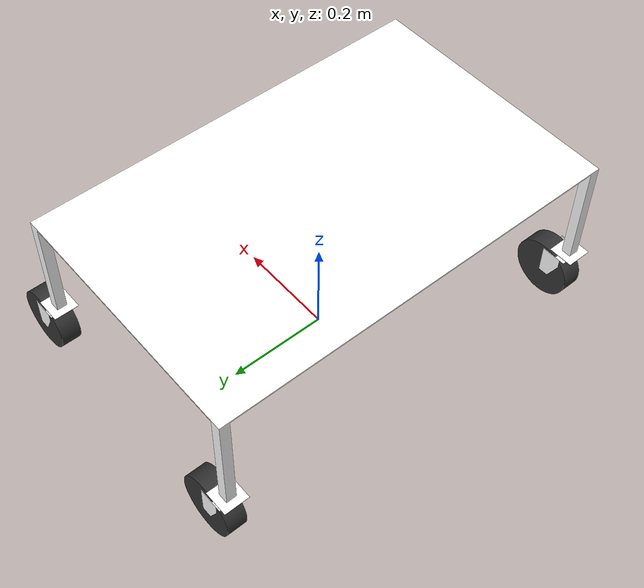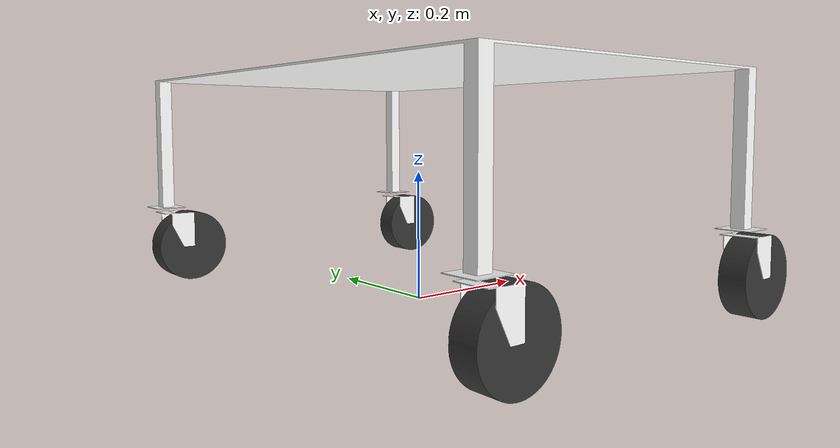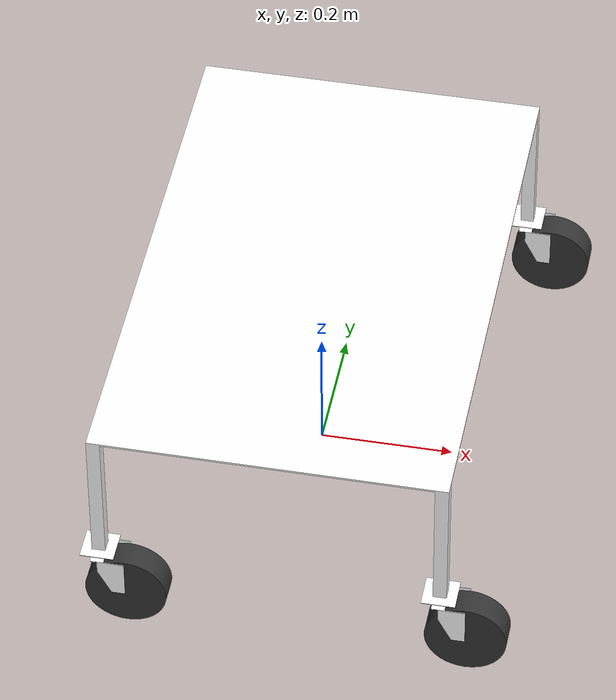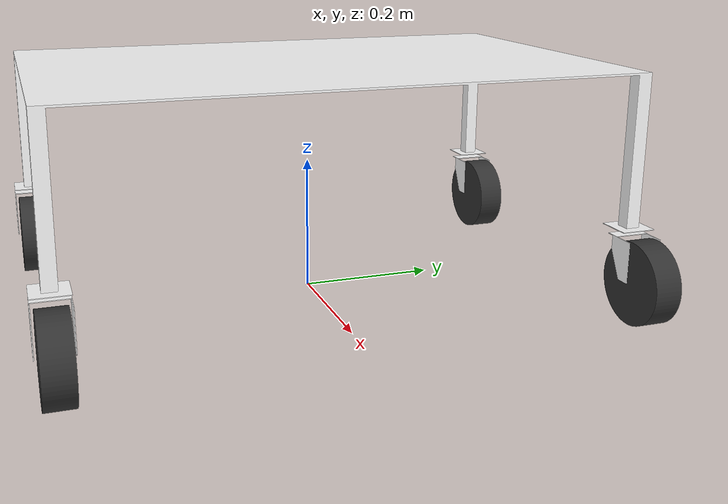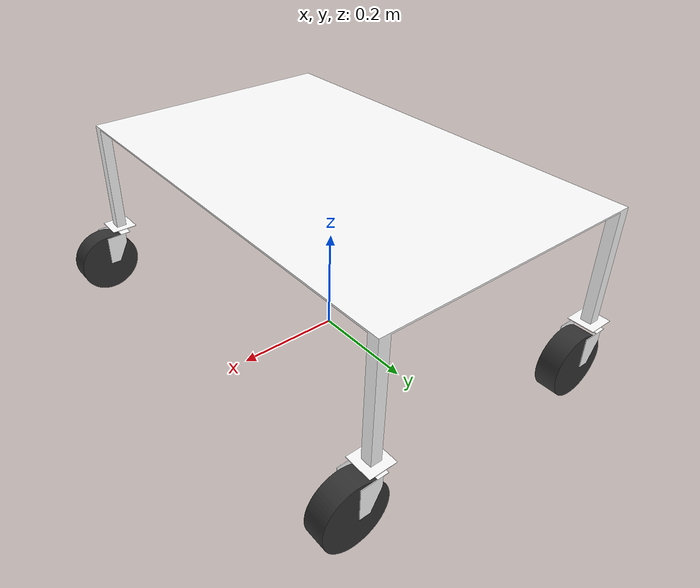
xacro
<?xml version="1.0" encoding="utf-8"?>
<robot xmlns:xacro="http://www.ros.org/wiki/xacro" name="movingshelf_4wheels_low_lifter">
	<xacro:include filename="$(find transbot_description)/urdf/movingshelf_4wheels_low_lifter/movingshelf_4wheels_low_lifter.urdf.xacro"></xacro:include>
	<xacro:movingshelf_4wheels_low_lifter prefix="" name=""></xacro:movingshelf_4wheels_low_lifter>
</robot>

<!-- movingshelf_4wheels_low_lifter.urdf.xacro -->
<robot xmlns:xacro="http://www.ros.org/wiki/xacro" name="movingshelf_4wheels_low_lifter">
	<xacro:macro name="movingshelf_4wheels_low_lifter" params="prefix='' name='movingshelf_4wheels_low_lifter' suffix=''">
		<link name="${prefix}${name}${suffix}_">
			<inertial density="7850">
				<origin xyz="7.1434424969451784e-09 -1.0000819495723251e-07 0.34356975308719584" rpy="0 0 0"></origin>
				<mass value="1.3580674615999062"></mass>
				<inertia ixx="0.08552684471742028" ixy="-9.702071834397552e-16" ixz="4.060661042722211e-09" iyy="0.03498381337262271" iyz="-5.4423935393383165e-08" izz="0.11806034793455031"></inertia>
			</inertial>
			<visual>
				<geometry>
					<mesh filename="package://transbot_description/meshes/movingshelf_4wheels_low_lifter/_.stl" scale="1e-3 1e-3 1e-3"></mesh>
				</geometry>
				<material name="">
					<color rgba="1 1 1 1"></color>
				</material>
			</visual>
			<collision>
				<geometry>
					<mesh filename="package://transbot_description/meshes/movingshelf_4wheels_low_lifter/_.stl" scale="1e-3 1e-3 1e-3"></mesh>
				</geometry>
			</collision>
		</link>
		<xacro:include filename="$(find transbot_description)/urdf/movingshelf_4wheels_low_lifter/castor/castor.urdf.xacro"></xacro:include>
		<joint name="j/${prefix}${name}${suffix}castor0/_" type="fixed">
			<origin xyz="0.25 0.4 0.13" rpy="0.0 0.0 0.0"></origin>
			<parent link="${prefix}${name}${suffix}_"></parent>
			<child link="${prefix}${name}${suffix}castor0/_"></child>
		</joint>
		<joint name="j/${prefix}${name}${suffix}castor1/_" type="fixed">
			<origin xyz="-0.25 0.4 0.13" rpy="0.0 0.0 0.0"></origin>
			<parent link="${prefix}${name}${suffix}_"></parent>
			<child link="${prefix}${name}${suffix}castor1/_"></child>
		</joint>
		<joint name="j/${prefix}${name}${suffix}castor2/_" type="fixed">
			<origin xyz="0.25 -0.4 0.13" rpy="0.0 0.0 0.0"></origin>
			<parent link="${prefix}${name}${suffix}_"></parent>
			<child link="${prefix}${name}${suffix}castor2/_"></child>
		</joint>
		<joint name="j/${prefix}${name}${suffix}castor3/_" type="fixed">
			<origin xyz="-0.25 -0.4 0.13" rpy="0.0 0.0 0.0"></origin>
			<parent link="${prefix}${name}${suffix}_"></parent>
			<child link="${prefix}${name}${suffix}castor3/_"></child>
		</joint>
		<xacro:castor prefix="${prefix}${name}${suffix}" suffix="0/"></xacro:castor>
		<xacro:castor prefix="${prefix}${name}${suffix}" suffix="1/"></xacro:castor>
		<xacro:castor prefix="${prefix}${name}${suffix}" suffix="2/"></xacro:castor>
		<xacro:castor prefix="${prefix}${name}${suffix}" suffix="3/"></xacro:castor>
	</xacro:macro>
</robot>

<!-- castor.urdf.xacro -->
<robot xmlns:xacro="http://www.ros.org/wiki/xacro" name="castor">
	<xacro:macro name="castor" params="prefix='' name='castor' suffix=''">
		<link name="${prefix}${name}${suffix}_">
			<inertial density="7850">
				<origin xyz="0.0 0.0 0.0" rpy="0 0 0"></origin>
				<mass value="0.010000000960038355"></mass>
				<inertia ixx="8.334167593144114e-06" ixy="-0.0" ixz="-0.0" iyy="8.334167593144114e-06" iyz="-0.0" izz="1.666666851936801e-05"></inertia>
			</inertial>
			<visual>
				<geometry>
					<mesh filename="package://transbot_description/meshes/movingshelf_4wheels_low_lifter/castor/_.stl" scale="1e-3 1e-3 1e-3"></mesh>
				</geometry>
				<material name="">
					<color rgba="1 1 1 1"></color>
				</material>
			</visual>
			<collision>
				<geometry>
					<mesh filename="package://transbot_description/meshes/movingshelf_4wheels_low_lifter/castor/_.stl" scale="1e-3 1e-3 1e-3"></mesh>
				</geometry>
			</collision>
		</link>
		<xacro:include filename="$(find transbot_description)/urdf/movingshelf_4wheels_low_lifter/castor/arm.urdf.xacro"></xacro:include>
		<xacro:include filename="$(find transbot_description)/urdf/movingshelf_4wheels_low_lifter/castor/wheel.urdf.xacro"></xacro:include>
		<joint name="j/${prefix}${name}${suffix}arm" type="continuous">
			<origin xyz="0.0 0.0 -0.01" rpy="0.0 0.0 0.0"></origin>
			<parent link="${prefix}${name}${suffix}_"></parent>
			<child link="${prefix}${name}${suffix}arm"></child>
			<axis xyz="0 0 1"></axis>
		</joint>
		<joint name="j/${prefix}${name}${suffix}wheel" type="continuous">
			<origin xyz="0.04 0.0 -0.06" rpy="1.5707963267948966 0.0 0.0"></origin>
			<parent link="${prefix}${name}${suffix}arm"></parent>
			<child link="${prefix}${name}${suffix}wheel"></child>
			<axis xyz="0 0 1"></axis>
		</joint>
		<xacro:arm prefix="${prefix}${name}${suffix}" suffix=""></xacro:arm>
		<xacro:wheel prefix="${prefix}${name}${suffix}" suffix=""></xacro:wheel>
	</xacro:macro>
</robot>

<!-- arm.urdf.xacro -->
<robot xmlns:xacro="http://www.ros.org/wiki/xacro" name="arm">
	<xacro:macro name="arm" params="prefix='' name='arm' suffix=''">
		<link name="${prefix}${name}${suffix}">
			<inertial density="7850">
				<origin xyz="0.018158393064544705 9.493440928499232e-09 -0.021373346834980968" rpy="0 0 0"></origin>
				<mass value="0.004989709850633517"></mass>
				<inertia ixx="4.269800316730365e-06" ixy="9.041006137306674e-13" ixz="6.760939545807843e-07" iyy="2.5602740276827752e-06" iyz="-3.380920874698791e-12" izz="3.497454039342391e-06"></inertia>
			</inertial>
			<visual>
				<geometry>
					<mesh filename="package://transbot_description/meshes/movingshelf_4wheels_low_lifter/castor/arm.stl" scale="1e-3 1e-3 1e-3"></mesh>
				</geometry>
				<material name="">
					<color rgba="1 1 1 1"></color>
				</material>
			</visual>
			<collision>
				<geometry>
					<mesh filename="package://transbot_description/meshes/movingshelf_4wheels_low_lifter/castor/arm.stl" scale="1e-3 1e-3 1e-3"></mesh>
				</geometry>
			</collision>
		</link>
	</xacro:macro>
</robot>

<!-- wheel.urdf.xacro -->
<robot xmlns:xacro="http://www.ros.org/wiki/xacro" name="wheel">
	<xacro:macro name="wheel" params="prefix='' name='wheel' suffix=''">
		<link name="${prefix}${name}${suffix}">
			<inertial density="2500">
				<origin xyz="-1.3637167276347799e-10 3.356841175716381e-10 -2.7766059334294673e-10" rpy="0 0 0"></origin>
				<mass value="0.451562770952781"></mass>
				<inertia ixx="0.00046587291156659666" ixy="-7.105427564316525e-13" ixz="2.3869796739285084e-13" iyy="0.0004658728509336166" iyz="-4.2088473089422936e-20" izz="0.0008113289974668683"></inertia>
			</inertial>
			<visual>
				<geometry>
					<mesh filename="package://transbot_description/meshes/movingshelf_4wheels_low_lifter/castor/wheel.stl" scale="1e-3 1e-3 1e-3"></mesh>
				</geometry>
				<material name="">
					<color rgba="0.2 0.2 0.2 1"></color>
				</material>
			</visual>
			<collision>
				<geometry>
					<mesh filename="package://transbot_description/meshes/movingshelf_4wheels_low_lifter/castor/wheel.stl" scale="1e-3 1e-3 1e-3"></mesh>
				</geometry>
			</collision>
		</link>
	</xacro:macro>
</robot>
